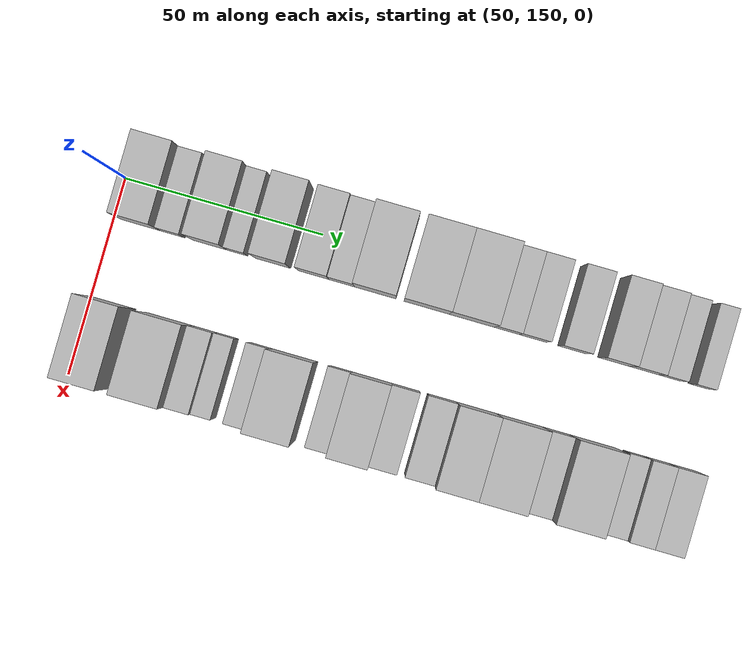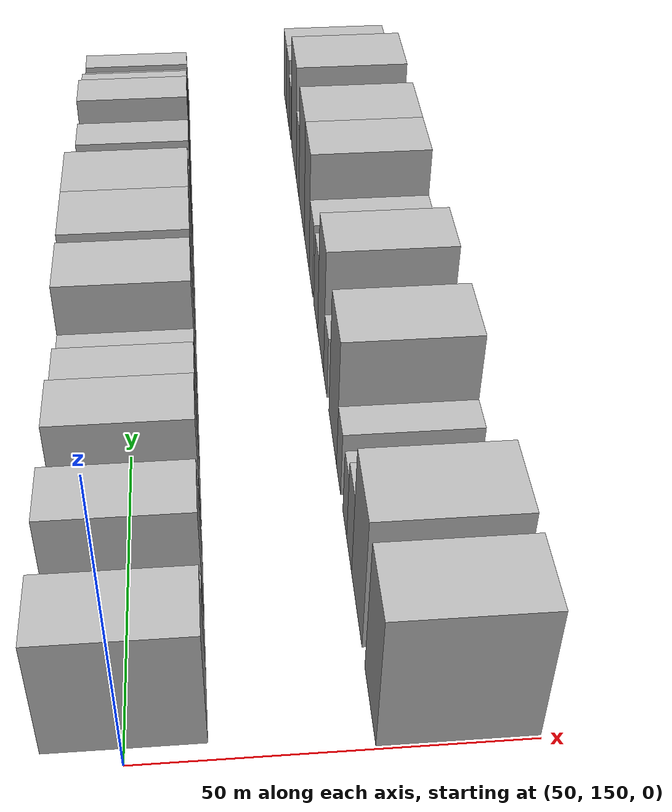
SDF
<sdf version="1.6">
 <world name="default">
  <model name="building_49">
   <static>1</static>
   <pose>50.0000 157.2295 0 0.000000 0.000000 0.000000</pose>
   <link name="link">
    <pose>0 0 10.50 0 0 0</pose>
    <collision name="collision"><geometry><box><size>20.0000 9.8917 21.0000</size></box></geometry></collision>
    <visual name="visual">
     <cast_shadows>0</cast_shadows>
     <geometry><box><size>20.0000 9.8917 21.0000</size></box></geometry>
     <material>
      <script>
       <uri>model://HANNAS_wall/materials/scripts</uri>
       <uri>model://HANNAS_wall/materials/textures</uri>
       <name>vrc/HANNAS_wall</name>
      </script>
     </material>
    </visual>
   </link>
  </model>
  <model name="building_50">
   <static>1</static>
   <pose>50.0000 165.1525 0 0.000000 0.000000 0.000000</pose>
   <link name="link">
    <pose>0 0 6.00 0 0 0</pose>
    <collision name="collision"><geometry><box><size>20.0000 5.9542 12.0000</size></box></geometry></collision>
    <visual name="visual">
     <cast_shadows>0</cast_shadows>
     <geometry><box><size>20.0000 5.9542 12.0000</size></box></geometry>
     <material>
      <script>
       <uri>model://HANNAS_wall/materials/scripts</uri>
       <uri>model://HANNAS_wall/materials/textures</uri>
       <name>vrc/HANNAS_wall</name>
      </script>
     </material>
    </visual>
   </link>
  </model>
  <model name="building_51">
   <static>1</static>
   <pose>50.0000 174.5503 0 0.000000 0.000000 0.000000</pose>
   <link name="link">
    <pose>0 0 10.50 0 0 0</pose>
    <collision name="collision"><geometry><box><size>20.0000 8.8413 21.0000</size></box></geometry></collision>
    <visual name="visual">
     <cast_shadows>0</cast_shadows>
     <geometry><box><size>20.0000 8.8413 21.0000</size></box></geometry>
     <material>
      <script>
       <uri>model://HANNAS_wall/materials/scripts</uri>
       <uri>model://HANNAS_wall/materials/textures</uri>
       <name>vrc/HANNAS_wall</name>
      </script>
     </material>
    </visual>
   </link>
  </model>
  <model name="building_52">
   <static>1</static>
   <pose>50.0000 181.5075 0 0.000000 0.000000 0.000000</pose>
   <link name="link">
    <pose>0 0 6.00 0 0 0</pose>
    <collision name="collision"><geometry><box><size>20.0000 5.0731 12.0000</size></box></geometry></collision>
    <visual name="visual">
     <cast_shadows>0</cast_shadows>
     <geometry><box><size>20.0000 5.0731 12.0000</size></box></geometry>
     <material>
      <script>
       <uri>model://HANNAS_wall/materials/scripts</uri>
       <uri>model://HANNAS_wall/materials/textures</uri>
       <name>vrc/HANNAS_wall</name>
      </script>
     </material>
    </visual>
   </link>
  </model>
  <model name="building_53">
   <static>1</static>
   <pose>50.0000 190.4797 0 0.000000 0.000000 0.000000</pose>
   <link name="link">
    <pose>0 0 10.50 0 0 0</pose>
    <collision name="collision"><geometry><box><size>20.0000 8.8713 21.0000</size></box></geometry></collision>
    <visual name="visual">
     <cast_shadows>0</cast_shadows>
     <geometry><box><size>20.0000 8.8713 21.0000</size></box></geometry>
     <material>
      <script>
       <uri>model://HANNAS_wall/materials/scripts</uri>
       <uri>model://HANNAS_wall/materials/textures</uri>
       <name>vrc/HANNAS_wall</name>
      </script>
     </material>
    </visual>
   </link>
  </model>
  <model name="building_54">
   <static>1</static>
   <pose>50.0000 200.8064 0 0.000000 0.000000 0.000000</pose>
   <link name="link">
    <pose>0 0 9.00 0 0 0</pose>
    <collision name="collision"><geometry><box><size>20.0000 7.7822 18.0000</size></box></geometry></collision>
    <visual name="visual">
     <cast_shadows>0</cast_shadows>
     <geometry><box><size>20.0000 7.7822 18.0000</size></box></geometry>
     <material>
      <script>
       <uri>model://HANNAS_wall/materials/scripts</uri>
       <uri>model://HANNAS_wall/materials/textures</uri>
       <name>vrc/HANNAS_wall</name>
      </script>
     </material>
    </visual>
   </link>
  </model>
  <model name="building_55">
   <static>1</static>
   <pose>50.0000 207.8902 0 0.000000 0.000000 0.000000</pose>
   <link name="link">
    <pose>0 0 7.50 0 0 0</pose>
    <collision name="collision"><geometry><box><size>20.0000 6.3853 15.0000</size></box></geometry></collision>
    <visual name="visual">
     <cast_shadows>0</cast_shadows>
     <geometry><box><size>20.0000 6.3853 15.0000</size></box></geometry>
     <material>
      <script>
       <uri>model://HANNAS_wall/materials/scripts</uri>
       <uri>model://HANNAS_wall/materials/textures</uri>
       <name>vrc/HANNAS_wall</name>
      </script>
     </material>
    </visual>
   </link>
  </model>
  <model name="building_56">
   <static>1</static>
   <pose>50.0000 216.3298 0 0.000000 0.000000 0.000000</pose>
   <link name="link">
    <pose>0 0 12.00 0 0 0</pose>
    <collision name="collision"><geometry><box><size>20.0000 10.4939 24.0000</size></box></geometry></collision>
    <visual name="visual">
     <cast_shadows>0</cast_shadows>
     <geometry><box><size>20.0000 10.4939 24.0000</size></box></geometry>
     <material>
      <script>
       <uri>model://HANNAS_wall/materials/scripts</uri>
       <uri>model://HANNAS_wall/materials/textures</uri>
       <name>vrc/HANNAS_wall</name>
      </script>
     </material>
    </visual>
   </link>
  </model>
  <model name="building_57">
   <static>1</static>
   <pose>50.0000 229.2718 0 0.000000 0.000000 0.000000</pose>
   <link name="link">
    <pose>0 0 12.00 0 0 0</pose>
    <collision name="collision"><geometry><box><size>20.0000 11.3902 24.0000</size></box></geometry></collision>
    <visual name="visual">
     <cast_shadows>0</cast_shadows>
     <geometry><box><size>20.0000 11.3902 24.0000</size></box></geometry>
     <material>
      <script>
       <uri>model://HANNAS_wall/materials/scripts</uri>
       <uri>model://HANNAS_wall/materials/textures</uri>
       <name>vrc/HANNAS_wall</name>
      </script>
     </material>
    </visual>
   </link>
  </model>
  <model name="building_58">
   <static>1</static>
   <pose>50.0000 240.6241 0 0.000000 0.000000 0.000000</pose>
   <link name="link">
    <pose>0 0 12.00 0 0 0</pose>
    <collision name="collision"><geometry><box><size>20.0000 11.3144 24.0000</size></box></geometry></collision>
    <visual name="visual">
     <cast_shadows>0</cast_shadows>
     <geometry><box><size>20.0000 11.3144 24.0000</size></box></geometry>
     <material>
      <script>
       <uri>model://HANNAS_wall/materials/scripts</uri>
       <uri>model://HANNAS_wall/materials/textures</uri>
       <name>vrc/HANNAS_wall</name>
      </script>
     </material>
    </visual>
   </link>
  </model>
  <model name="building_59">
   <static>1</static>
   <pose>50.0000 249.4030 0 0.000000 0.000000 0.000000</pose>
   <link name="link">
    <pose>0 0 7.50 0 0 0</pose>
    <collision name="collision"><geometry><box><size>20.0000 6.2435 15.0000</size></box></geometry></collision>
    <visual name="visual">
     <cast_shadows>0</cast_shadows>
     <geometry><box><size>20.0000 6.2435 15.0000</size></box></geometry>
     <material>
      <script>
       <uri>model://HANNAS_wall/materials/scripts</uri>
       <uri>model://HANNAS_wall/materials/textures</uri>
       <name>vrc/HANNAS_wall</name>
      </script>
     </material>
    </visual>
   </link>
  </model>
  <model name="building_60">
   <static>1</static>
   <pose>50.0000 256.0149 0 0.000000 0.000000 0.000000</pose>
   <link name="link">
    <pose>0 0 7.50 0 0 0</pose>
    <collision name="collision"><geometry><box><size>20.0000 6.9802 15.0000</size></box></geometry></collision>
    <visual name="visual">
     <cast_shadows>0</cast_shadows>
     <geometry><box><size>20.0000 6.9802 15.0000</size></box></geometry>
     <material>
      <script>
       <uri>model://HANNAS_wall/materials/scripts</uri>
       <uri>model://HANNAS_wall/materials/textures</uri>
       <name>vrc/HANNAS_wall</name>
      </script>
     </material>
    </visual>
   </link>
  </model>
  <model name="building_61">
   <static>1</static>
   <pose>50.0000 266.0698 0 0.000000 0.000000 0.000000</pose>
   <link name="link">
    <pose>0 0 7.50 0 0 0</pose>
    <collision name="collision"><geometry><box><size>20.0000 7.1296 15.0000</size></box></geometry></collision>
    <visual name="visual">
     <cast_shadows>0</cast_shadows>
     <geometry><box><size>20.0000 7.1296 15.0000</size></box></geometry>
     <material>
      <script>
       <uri>model://HANNAS_wall/materials/scripts</uri>
       <uri>model://HANNAS_wall/materials/textures</uri>
       <name>vrc/HANNAS_wall</name>
      </script>
     </material>
    </visual>
   </link>
  </model>
  <model name="building_62">
   <static>1</static>
   <pose>50.0000 276.4261 0 0.000000 0.000000 0.000000</pose>
   <link name="link">
    <pose>0 0 9.00 0 0 0</pose>
    <collision name="collision"><geometry><box><size>20.0000 7.5830 18.0000</size></box></geometry></collision>
    <visual name="visual">
     <cast_shadows>0</cast_shadows>
     <geometry><box><size>20.0000 7.5830 18.0000</size></box></geometry>
     <material>
      <script>
       <uri>model://HANNAS_wall/materials/scripts</uri>
       <uri>model://HANNAS_wall/materials/textures</uri>
       <name>vrc/HANNAS_wall</name>
      </script>
     </material>
    </visual>
   </link>
  </model>
  <model name="building_63">
   <static>1</static>
   <pose>50.0000 283.9434 0 0.000000 0.000000 0.000000</pose>
   <link name="link">
    <pose>0 0 7.50 0 0 0</pose>
    <collision name="collision"><geometry><box><size>20.0000 7.4516 15.0000</size></box></geometry></collision>
    <visual name="visual">
     <cast_shadows>0</cast_shadows>
     <geometry><box><size>20.0000 7.4516 15.0000</size></box></geometry>
     <material>
      <script>
       <uri>model://HANNAS_wall/materials/scripts</uri>
       <uri>model://HANNAS_wall/materials/textures</uri>
       <name>vrc/HANNAS_wall</name>
      </script>
     </material>
    </visual>
   </link>
  </model>
  <model name="building_64">
   <static>1</static>
   <pose>50.0000 290.5833 0 0.000000 0.000000 0.000000</pose>
   <link name="link">
    <pose>0 0 6.00 0 0 0</pose>
    <collision name="collision"><geometry><box><size>20.0000 5.8281 12.0000</size></box></geometry></collision>
    <visual name="visual">
     <cast_shadows>0</cast_shadows>
     <geometry><box><size>20.0000 5.8281 12.0000</size></box></geometry>
     <material>
      <script>
       <uri>model://HANNAS_wall/materials/scripts</uri>
       <uri>model://HANNAS_wall/materials/textures</uri>
       <name>vrc/HANNAS_wall</name>
      </script>
     </material>
    </visual>
   </link>
  </model>
  <model name="building_65">
   <static>1</static>
   <pose>50.0000 297.9425 0 0.000000 0.000000 0.000000</pose>
   <link name="link">
    <pose>0 0 6.00 0 0 0</pose>
    <collision name="collision"><geometry><box><size>20.0000 4.8903 12.0000</size></box></geometry></collision>
    <visual name="visual">
     <cast_shadows>0</cast_shadows>
     <geometry><box><size>20.0000 4.8903 12.0000</size></box></geometry>
     <material>
      <script>
       <uri>model://HANNAS_wall/materials/scripts</uri>
       <uri>model://HANNAS_wall/materials/textures</uri>
       <name>vrc/HANNAS_wall</name>
      </script>
     </material>
    </visual>
   </link>
  </model>
  <model name="building_118">
   <static>1</static>
   <pose>90.0000 155.9357 0 0.000000 0.000000 0.000000</pose>
   <link name="link">
    <pose>0 0 12.00 0 0 0</pose>
    <collision name="collision"><geometry><box><size>20.0000 11.0467 24.0000</size></box></geometry></collision>
    <visual name="visual">
     <cast_shadows>0</cast_shadows>
     <geometry><box><size>20.0000 11.0467 24.0000</size></box></geometry>
     <material>
      <script>
       <uri>model://HANNAS_wall/materials/scripts</uri>
       <uri>model://HANNAS_wall/materials/textures</uri>
       <name>vrc/HANNAS_wall</name>
      </script>
     </material>
    </visual>
   </link>
  </model>
  <model name="building_119">
   <static>1</static>
   <pose>90.0000 170.4242 0 0.000000 0.000000 0.000000</pose>
   <link name="link">
    <pose>0 0 12.00 0 0 0</pose>
    <collision name="collision"><geometry><box><size>20.0000 11.9303 24.0000</size></box></geometry></collision>
    <visual name="visual">
     <cast_shadows>0</cast_shadows>
     <geometry><box><size>20.0000 11.9303 24.0000</size></box></geometry>
     <material>
      <script>
       <uri>model://HANNAS_wall/materials/scripts</uri>
       <uri>model://HANNAS_wall/materials/textures</uri>
       <name>vrc/HANNAS_wall</name>
      </script>
     </material>
    </visual>
   </link>
  </model>
  <model name="building_120">
   <static>1</static>
   <pose>90.0000 179.4521 0 0.000000 0.000000 0.000000</pose>
   <link name="link">
    <pose>0 0 7.50 0 0 0</pose>
    <collision name="collision"><geometry><box><size>20.0000 6.1255 15.0000</size></box></geometry></collision>
    <visual name="visual">
     <cast_shadows>0</cast_shadows>
     <geometry><box><size>20.0000 6.1255 15.0000</size></box></geometry>
     <material>
      <script>
       <uri>model://HANNAS_wall/materials/scripts</uri>
       <uri>model://HANNAS_wall/materials/textures</uri>
       <name>vrc/HANNAS_wall</name>
      </script>
     </material>
    </visual>
   </link>
  </model>
  <model name="building_121">
   <static>1</static>
   <pose>90.0000 184.9985 0 0.000000 0.000000 0.000000</pose>
   <link name="link">
    <pose>0 0 6.00 0 0 0</pose>
    <collision name="collision"><geometry><box><size>20.0000 4.9672 12.0000</size></box></geometry></collision>
    <visual name="visual">
     <cast_shadows>0</cast_shadows>
     <geometry><box><size>20.0000 4.9672 12.0000</size></box></geometry>
     <material>
      <script>
       <uri>model://HANNAS_wall/materials/scripts</uri>
       <uri>model://HANNAS_wall/materials/textures</uri>
       <name>vrc/HANNAS_wall</name>
      </script>
     </material>
    </visual>
   </link>
  </model>
  <model name="building_122">
   <static>1</static>
   <pose>90.0000 193.3153 0 0.000000 0.000000 0.000000</pose>
   <link name="link">
    <pose>0 0 6.00 0 0 0</pose>
    <collision name="collision"><geometry><box><size>20.0000 5.6664 12.0000</size></box></geometry></collision>
    <visual name="visual">
     <cast_shadows>0</cast_shadows>
     <geometry><box><size>20.0000 5.6664 12.0000</size></box></geometry>
     <material>
      <script>
       <uri>model://HANNAS_wall/materials/scripts</uri>
       <uri>model://HANNAS_wall/materials/textures</uri>
       <name>vrc/HANNAS_wall</name>
      </script>
     </material>
    </visual>
   </link>
  </model>
  <model name="building_123">
   <static>1</static>
   <pose>90.0000 201.8727 0 0.000000 0.000000 0.000000</pose>
   <link name="link">
    <pose>0 0 12.00 0 0 0</pose>
    <collision name="collision"><geometry><box><size>20.0000 11.4484 24.0000</size></box></geometry></collision>
    <visual name="visual">
     <cast_shadows>0</cast_shadows>
     <geometry><box><size>20.0000 11.4484 24.0000</size></box></geometry>
     <material>
      <script>
       <uri>model://HANNAS_wall/materials/scripts</uri>
       <uri>model://HANNAS_wall/materials/textures</uri>
       <name>vrc/HANNAS_wall</name>
      </script>
     </material>
    </visual>
   </link>
  </model>
  <model name="building_124">
   <static>1</static>
   <pose>90.0000 213.4595 0 0.000000 0.000000 0.000000</pose>
   <link name="link">
    <pose>0 0 6.00 0 0 0</pose>
    <collision name="collision"><geometry><box><size>20.0000 5.7252 12.0000</size></box></geometry></collision>
    <visual name="visual">
     <cast_shadows>0</cast_shadows>
     <geometry><box><size>20.0000 5.7252 12.0000</size></box></geometry>
     <material>
      <script>
       <uri>model://HANNAS_wall/materials/scripts</uri>
       <uri>model://HANNAS_wall/materials/textures</uri>
       <name>vrc/HANNAS_wall</name>
      </script>
     </material>
    </visual>
   </link>
  </model>
  <model name="building_125">
   <static>1</static>
   <pose>90.0000 221.3159 0 0.000000 0.000000 0.000000</pose>
   <link name="link">
    <pose>0 0 12.00 0 0 0</pose>
    <collision name="collision"><geometry><box><size>20.0000 9.9875 24.0000</size></box></geometry></collision>
    <visual name="visual">
     <cast_shadows>0</cast_shadows>
     <geometry><box><size>20.0000 9.9875 24.0000</size></box></geometry>
     <material>
      <script>
       <uri>model://HANNAS_wall/materials/scripts</uri>
       <uri>model://HANNAS_wall/materials/textures</uri>
       <name>vrc/HANNAS_wall</name>
      </script>
     </material>
    </visual>
   </link>
  </model>
  <model name="building_126">
   <static>1</static>
   <pose>90.0000 229.7946 0 0.000000 0.000000 0.000000</pose>
   <link name="link">
    <pose>0 0 7.50 0 0 0</pose>
    <collision name="collision"><geometry><box><size>20.0000 6.9701 15.0000</size></box></geometry></collision>
    <visual name="visual">
     <cast_shadows>0</cast_shadows>
     <geometry><box><size>20.0000 6.9701 15.0000</size></box></geometry>
     <material>
      <script>
       <uri>model://HANNAS_wall/materials/scripts</uri>
       <uri>model://HANNAS_wall/materials/textures</uri>
       <name>vrc/HANNAS_wall</name>
      </script>
     </material>
    </visual>
   </link>
  </model>
  <model name="building_127">
   <static>1</static>
   <pose>90.0000 238.9238 0 0.000000 0.000000 0.000000</pose>
   <link name="link">
    <pose>0 0 7.50 0 0 0</pose>
    <collision name="collision"><geometry><box><size>20.0000 7.2883 15.0000</size></box></geometry></collision>
    <visual name="visual">
     <cast_shadows>0</cast_shadows>
     <geometry><box><size>20.0000 7.2883 15.0000</size></box></geometry>
     <material>
      <script>
       <uri>model://HANNAS_wall/materials/scripts</uri>
       <uri>model://HANNAS_wall/materials/textures</uri>
       <name>vrc/HANNAS_wall</name>
      </script>
     </material>
    </visual>
   </link>
  </model>
  <model name="building_128">
   <static>1</static>
   <pose>90.0000 247.6654 0 0.000000 0.000000 0.000000</pose>
   <link name="link">
    <pose>0 0 12.00 0 0 0</pose>
    <collision name="collision"><geometry><box><size>20.0000 10.1949 24.0000</size></box></geometry></collision>
    <visual name="visual">
     <cast_shadows>0</cast_shadows>
     <geometry><box><size>20.0000 10.1949 24.0000</size></box></geometry>
     <material>
      <script>
       <uri>model://HANNAS_wall/materials/scripts</uri>
       <uri>model://HANNAS_wall/materials/textures</uri>
       <name>vrc/HANNAS_wall</name>
      </script>
     </material>
    </visual>
   </link>
  </model>
  <model name="building_129">
   <static>1</static>
   <pose>90.0000 258.5960 0 0.000000 0.000000 0.000000</pose>
   <link name="link">
    <pose>0 0 12.00 0 0 0</pose>
    <collision name="collision"><geometry><box><size>20.0000 11.6663 24.0000</size></box></geometry></collision>
    <visual name="visual">
     <cast_shadows>0</cast_shadows>
     <geometry><box><size>20.0000 11.6663 24.0000</size></box></geometry>
     <material>
      <script>
       <uri>model://HANNAS_wall/materials/scripts</uri>
       <uri>model://HANNAS_wall/materials/textures</uri>
       <name>vrc/HANNAS_wall</name>
      </script>
     </material>
    </visual>
   </link>
  </model>
  <model name="building_130">
   <static>1</static>
   <pose>90.0000 267.7659 0 0.000000 0.000000 0.000000</pose>
   <link name="link">
    <pose>0 0 7.50 0 0 0</pose>
    <collision name="collision"><geometry><box><size>20.0000 6.6734 15.0000</size></box></geometry></collision>
    <visual name="visual">
     <cast_shadows>0</cast_shadows>
     <geometry><box><size>20.0000 6.6734 15.0000</size></box></geometry>
     <material>
      <script>
       <uri>model://HANNAS_wall/materials/scripts</uri>
       <uri>model://HANNAS_wall/materials/textures</uri>
       <name>vrc/HANNAS_wall</name>
      </script>
     </material>
    </visual>
   </link>
  </model>
  <model name="building_131">
   <static>1</static>
   <pose>90.0000 276.9827 0 0.000000 0.000000 0.000000</pose>
   <link name="link">
    <pose>0 0 12.00 0 0 0</pose>
    <collision name="collision"><geometry><box><size>20.0000 11.7604 24.0000</size></box></geometry></collision>
    <visual name="visual">
     <cast_shadows>0</cast_shadows>
     <geometry><box><size>20.0000 11.7604 24.0000</size></box></geometry>
     <material>
      <script>
       <uri>model://HANNAS_wall/materials/scripts</uri>
       <uri>model://HANNAS_wall/materials/textures</uri>
       <name>vrc/HANNAS_wall</name>
      </script>
     </material>
    </visual>
   </link>
  </model>
  <model name="building_132">
   <static>1</static>
   <pose>90.0000 287.4120 0 0.000000 0.000000 0.000000</pose>
   <link name="link">
    <pose>0 0 6.00 0 0 0</pose>
    <collision name="collision"><geometry><box><size>20.0000 5.0981 12.0000</size></box></geometry></collision>
    <visual name="visual">
     <cast_shadows>0</cast_shadows>
     <geometry><box><size>20.0000 5.0981 12.0000</size></box></geometry>
     <material>
      <script>
       <uri>model://HANNAS_wall/materials/scripts</uri>
       <uri>model://HANNAS_wall/materials/textures</uri>
       <name>vrc/HANNAS_wall</name>
      </script>
     </material>
    </visual>
   </link>
  </model>
  <model name="building_133">
   <static>1</static>
   <pose>90.0000 293.0583 0 0.000000 0.000000 0.000000</pose>
   <link name="link">
    <pose>0 0 7.50 0 0 0</pose>
    <collision name="collision"><geometry><box><size>20.0000 6.1946 15.0000</size></box></geometry></collision>
    <visual name="visual">
     <cast_shadows>0</cast_shadows>
     <geometry><box><size>20.0000 6.1946 15.0000</size></box></geometry>
     <material>
      <script>
       <uri>model://HANNAS_wall/materials/scripts</uri>
       <uri>model://HANNAS_wall/materials/textures</uri>
       <name>vrc/HANNAS_wall</name>
      </script>
     </material>
    </visual>
   </link>
  </model>
  <model name="building_134">
   <static>1</static>
   <pose>90.0000 299.7449 0 0.000000 0.000000 0.000000</pose>
   <link name="link">
    <pose>0 0 7.50 0 0 0</pose>
    <collision name="collision"><geometry><box><size>20.0000 7.1788 15.0000</size></box></geometry></collision>
    <visual name="visual">
     <cast_shadows>0</cast_shadows>
     <geometry><box><size>20.0000 7.1788 15.0000</size></box></geometry>
     <material>
      <script>
       <uri>model://HANNAS_wall/materials/scripts</uri>
       <uri>model://HANNAS_wall/materials/textures</uri>
       <name>vrc/HANNAS_wall</name>
      </script>
     </material>
    </visual>
   </link>
  </model>
 </world>
</sdf>
